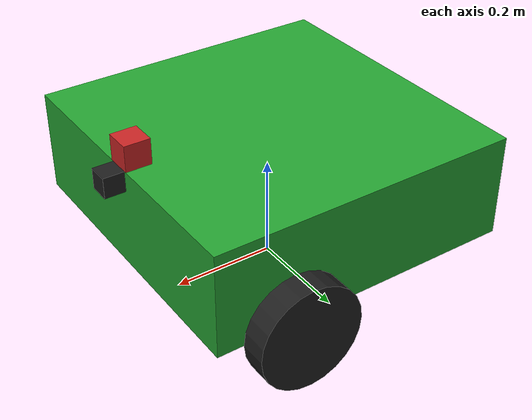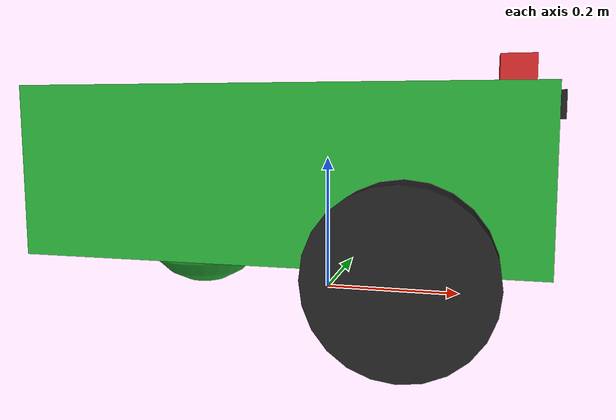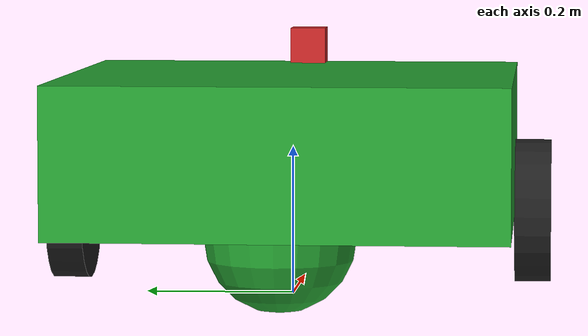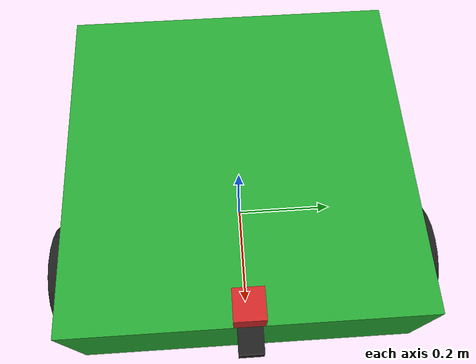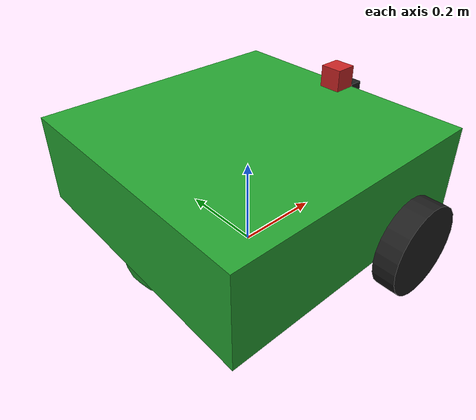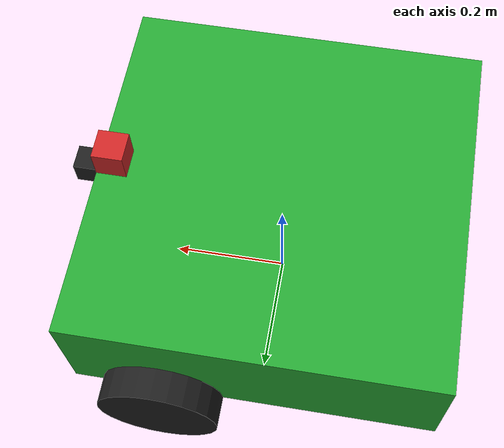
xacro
<?xml version='1.0'?>
<robot name="robot" xmlns:xacro="http://www.ros.org/wiki/xacro">
    <xacro:arg name="namespace" default="follower"/>

    <xacro:include filename="materials.xacro" />
    <xacro:include filename="wheel.xacro" />
    <xacro:include filename="inertial.xacro" />

    <ros2_control name="GazeboSimSystem" type="system">
        <hardware>
            <plugin>gz_ros2_control/GazeboSimSystem</plugin>
        </hardware>
        <joint name="wheel_left_joint">
            <command_interface name="velocity"/>
            <state_interface name="position"/>
            <state_interface name="velocity">
                <param name="initial_value">0.0</param>
            </state_interface>
        </joint>
        <joint name="wheel_right_joint">
            <command_interface name="velocity"/>
            <state_interface name="position"/>
            <state_interface name="velocity">
                <param name="initial_value">0.0</param>
            </state_interface>
        </joint>
        <joint name="caster_roll_joint">
            <state_interface name="position"/>
            <state_interface name="velocity"/>
        </joint>
        <joint name="caster_pitch_joint">
            <state_interface name="position"/>
            <state_interface name="velocity"/>
        </joint>
    </ros2_control>

    <gazebo>
        <plugin filename="gz_ros2_control-system" name="gz_ros2_control::GazeboSimROS2ControlPlugin">
            <parameters>$(find follower_scene)/config/diff_$(arg namespace).yaml</parameters>
            <ros>
                <namespace>$(arg namespace)</namespace>
                <remapping>~/robot_description:=/$(arg namespace)/robot_description</remapping>
                <remapping>tf:=/tf</remapping>
                <remapping>tf_static:=/tf_static</remapping>
            </ros>
        </plugin>
    </gazebo>

    <link name='base_link'>
        <origin xyz="0.0 0.0 0.1" rpy="0.0 0 0.0"/>
        <visual name='base_visual'>
            <origin xyz="0.0 0.0 0.2" rpy="0.0 0.0 0.0"/>
            <geometry><box size="0.6 0.6 0.2"/></geometry>
            <material name="green"/>
        </visual>
        <xacro:inertial_box mass="1" x="0.6" y="0.6" z="0.2">
            <origin xyz="0 0 0.2" rpy="0 0 0"/>
        </xacro:inertial_box>
        <collision>
            <origin xyz="0 0 0.2" rpy="0 0 0"/>
            <geometry><box size="0.6 0.6 0.2"/></geometry>
        </collision>
    </link>

    <link name="caster_link">
        <visual name="caster_visual">
            <origin xyz="0 0 0" rpy="0 0 0"/>
            <geometry><sphere radius="0.1"/></geometry>
            <material name="green"/>
        </visual>
        <collision name="caster_collision">
            <origin xyz="0 0 0" rpy="0 0 0"/>
            <geometry><sphere radius="0.1"/></geometry>
        </collision>
        <xacro:inertial_sphere mass="0.05" radius="0.1">
            <origin xyz="0 0 0" rpy="0 0 0"/>
        </xacro:inertial_sphere>
    </link>

    <link name="caster_roll_link">
        <inertial>
            <mass value="0.001"/>
            <origin xyz="0 0 0" rpy="0 0 0"/>
            <inertia ixx="1e-6" ixy="0" ixz="0"
                    iyy="1e-6" iyz="0"
                    izz="1e-6"/>
        </inertial>
    </link>

    <joint name="caster_roll_joint" type="continuous">
        <origin xyz="-0.2 0 0.1" rpy="0 0 0"/>
        <parent link="base_link"/>
        <child link="caster_roll_link"/>
        <axis xyz="1 0 0"/>
        <dynamics damping="0.0" friction="0.0"/>
    </joint>

    <joint name="caster_pitch_joint" type="continuous">
        <origin xyz="0 0 0" rpy="0 0 0"/>
        <parent link="caster_roll_link"/>
        <child link="caster_link"/>
        <axis xyz="0 1 0"/>
        <dynamics damping="0.0" friction="0.0"/>
    </joint>

    <gazebo reference="caster_link">
        <mu1>0.0</mu1>
        <mu2>0.0</mu2>
        <surface>
            <friction>
                <ode>
                    <mu>0.0</mu>
                    <mu2>0.0</mu2>
                </ode>
            </friction>
            <contact>
                <ode>
                    <kp>1000000.0</kp>
                    <kd>100.0</kd>
                    <min_depth>0.001</min_depth>
                    <max_vel>1.0</max_vel>
                </ode>
            </contact>
        </surface>
        <kp>1000000.0</kp>
        <kd>100.0</kd>
        <minDepth>0.001</minDepth>
        <maxVel>1.0</maxVel>
    </gazebo>

    <xacro:wheel side="left" x="0.15" y="0.325" z="0.1"/>
    <xacro:wheel side="right" x="0.15" y="-0.325" z="0.1"/>

    <link name="camera_link">
        <visual name="camera_link_visual">
         <origin xyz="0 0 0" rpy=" 0 0 0"/>
         <geometry><box size="0.04 0.04 0.04"/></geometry>
        </visual>

        <collision name="camera_link_colision">
         <origin xyz="0 0 0" rpy=" 0 0 0"/>
         <geometry><box size="0.04 0.04 0.04"/></geometry>
        </collision>

        <inertial name="camera_link_inertial">
         <origin xyz="0 0 0" rpy=" 0 0 0"/>
            <mass value="0.1"/>
            <inertia ixx="1e-3" ixy="0" ixz="0"
                    iyy="1e-3" iyz="0"
                    izz="1e-3"/>
        </inertial>
    </link>
    <joint name="camera_joint" type="fixed">
        <origin xyz="0.32 0 0.28" rpy="0 0 0"/>
        <parent link="base_link"/>
        <child link="camera_link"/>
    </joint>

    <gazebo reference="camera_link">
        <material>Gazebo/Black</material>

        <sensor name="camera" type="camera">
            <pose> 0 0 0 0 0 0 </pose>
            <visualize>true</visualize>
            <update_rate>10</update_rate>
            <camera>
                <camera_info_topic>/$(arg namespace)/camera/camera_info</camera_info_topic>
                <horizontal_fov>2.094</horizontal_fov>
                <image>
                    <format>R8G8B8</format>
                    <width>1920</width>
                    <height>1080</height>
                </image>
                <clip>
                    <near>0.03</near>
                    <far>8.0</far>
                </clip>
            </camera>
            <topic>/$(arg namespace)/camera/image_raw</topic>
            <gz_frame_id>$(arg namespace)/camera_link</gz_frame_id>
        </sensor>
    </gazebo>

    <link name="lidar_link">
        <visual name='lidar_visual'>
            <origin xyz="0 0 0" rpy=" 0 0 0"/>
            <geometry>
                <box size="0.05 0.05 0.05"/>
            </geometry>
            <material name="red"/>
        </visual>
        <inertial name="lidar_link_inertial">
         <origin xyz="0 0 0" rpy=" 0 0 0"/>
            <mass value="0.1"/>
            <inertia ixx="1e-3" ixy="0" ixz="0"
                    iyy="1e-3" iyz="0"
                    izz="1e-3"/>
        </inertial>
        <collision>
            <origin xyz="0 0 0" rpy="0 0 0"/>
                <geometry>
                    <box size="0.05 0.05 0.05"/>
                </geometry>
        </collision>
    </link>
    <joint name="lidar_joint" type="fixed">
        <origin xyz="0.275 0 0.325" rpy="0 0 0"/>
        <child link="lidar_link"/>
        <parent link="base_link"/>
        <axis xyz="0 0 1"/>
    </joint>

    <gazebo reference="lidar_link">
     <sensor name='gpu_lidar' type='gpu_lidar'>
          <pose>0 0 0 0 0 0</pose>
          <topic>/$(arg namespace)/scan</topic>
          <gz_frame_id>$(arg namespace)/lidar_link</gz_frame_id>
          <update_rate>10</update_rate>
          <lidar>
            <scan>
              <horizontal>
                <samples>640</samples>
                <resolution>1</resolution>
                <min_angle>-1.85</min_angle>
                <max_angle>1.85</max_angle>
              </horizontal>
              <vertical>
                <samples>1</samples>
                <resolution>1</resolution>
                <min_angle>0.0</min_angle>
                <max_angle>0.0</max_angle>
              </vertical>
            </scan>
            <range>
              <min>0.08</min>
              <max>10.0</max>
              <resolution>0.01</resolution>
            </range>
          </lidar>
          <visualize>true</visualize>
        </sensor>
    </gazebo>

</robot>

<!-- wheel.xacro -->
<robot name="diff_drive" xmlns:xacro="http://www.ros.org/wiki/xacro">
<xacro:macro name="wheel" params="side x y z">
    <link name='wheel_${side}'>
        <visual name='wheel_${side}_visual'>
            <origin xyz="0 0 0" rpy=" 0 0 0"/>
            <geometry><cylinder length="0.05" radius="0.1"/></geometry>
            <material name="black"/>
        </visual>
        <xacro:inertial_cylinder mass="0.1" length="0.05" radius="0.1">
            <origin xyz="0 0 0" rpy="0 0 0"/>
        </xacro:inertial_cylinder>
        <collision>
            <origin xyz="0 0 0" rpy="0 0 0"/>
            <geometry><cylinder radius="0.1" length="0.05"/></geometry>
        </collision>
    </link>
    <joint name="wheel_${side}_joint" type="continuous">
        <origin xyz="${x} ${y} ${z}" rpy="${-pi/2} 0 0"/>
        <child link="wheel_${side}"/>
        <axis xyz="0 0 1"/>
        <parent link="base_link"/>
        <limit effort="50" velocity="100"/>
        <joint_properties damping="0" friction="0.01"/>
    </joint>

    <gazebo reference="wheel_${side}">
        <mu1>3.0</mu1>
        <mu2>3.0</mu2>
        <surface>
            <friction>
                <ode>
                    <mu>3.0</mu>
                    <mu2>3.0</mu2>
                </ode>
            </friction>
            <contact>
                <ode>
                    <kp>1000000.0</kp>
                    <kd>100.0</kd>
                    <min_depth>0.001</min_depth>
                    <max_vel>1.0</max_vel>
                </ode>
            </contact>
        </surface>
        <kp>1000000.0</kp>
        <kd>100.0</kd>
        <minDepth>0.001</minDepth>
        <maxVel>1.0</maxVel>
    </gazebo>

</xacro:macro>
</robot>
